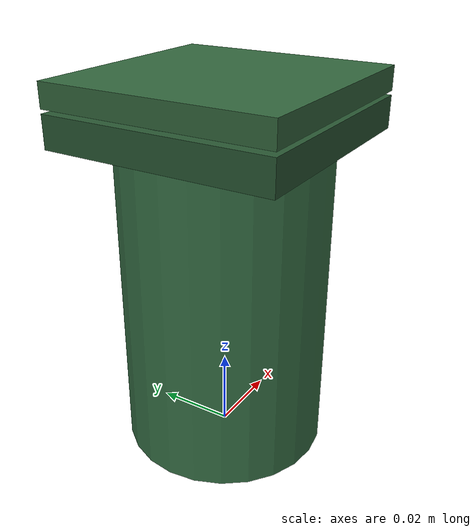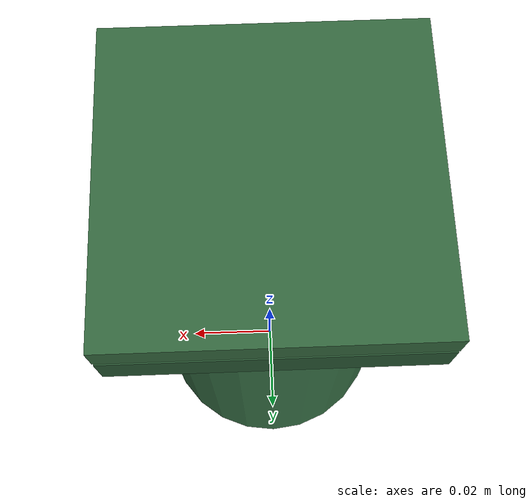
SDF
<?xml version="1.0"?>
<sdf version="1.7">
  <model name="bin_empty">
    <static>true</static>
    <link name="link">
<visual name="body"><pose>0 0 0.0440 0 0 0</pose><geometry><cylinder><radius>0.0260</radius><length>0.0880</length></cylinder></geometry><material><ambient>0.22 0.45 0.28 1</ambient><diffuse>0.22 0.45 0.28 1</diffuse></material></visual>
      <collision name="body_c_c"><pose>0 0 0.0440 0 0 0</pose><geometry><cylinder><radius>0.0260</radius><length>0.0880</length></cylinder></geometry></collision>
      <visual name="rim"><pose>0 0 0.0840 0 0 0</pose><geometry><box><size>0.0572 0.0572 0.008</size></box></geometry><material><ambient>0.16 0.34 0.20 1</ambient><diffuse>0.16 0.34 0.20 1</diffuse></material></visual>
      <visual name="lid"><pose>0 0 0.0920 0 0 0</pose><geometry><box><size>0.0572 0.0572 0.006</size></box></geometry><material><ambient>0.20 0.40 0.24 1</ambient><diffuse>0.20 0.40 0.24 1</diffuse></material></visual>
    </link>
  </model>
</sdf>
